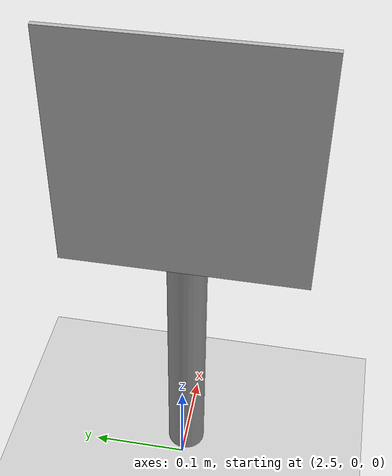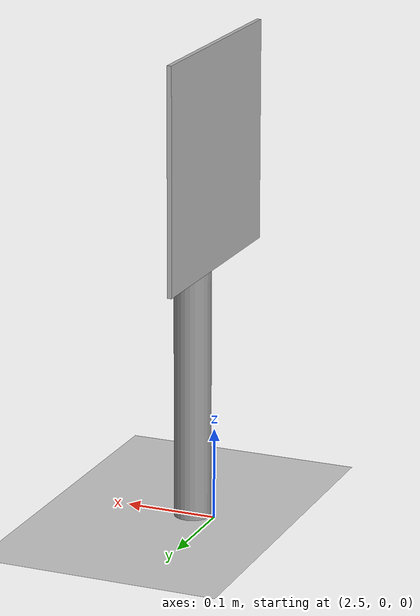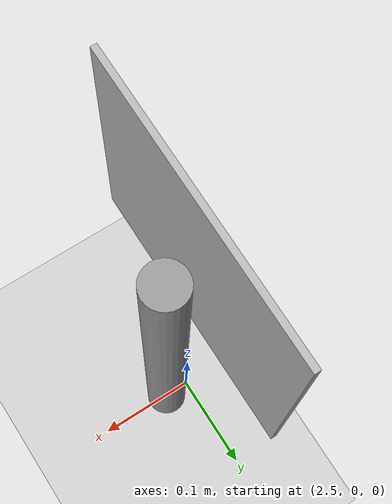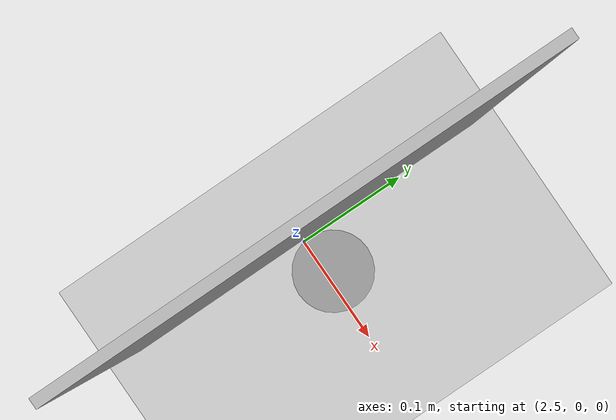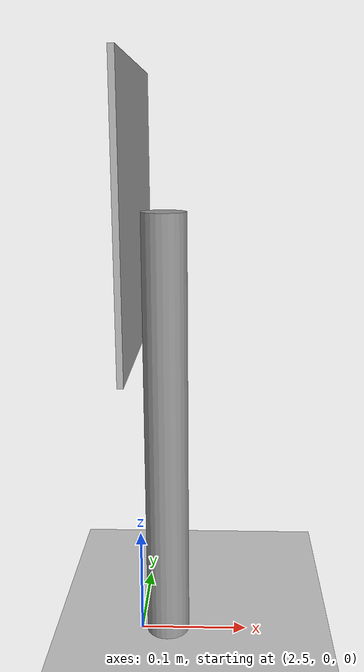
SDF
<sdf version="1.7">
  <world name="aruco_docking_world">
    <physics type="ode">
      <max_step_size>0.001</max_step_size>
      <real_time_update_rate>1000</real_time_update_rate>
      <ode>
        <solver><iters>150</iters><sor>1.3</sor></solver>
        <constraints><erp>0.2</erp><cfm>0.0</cfm></constraints>
      </ode>
    </physics>

    <scene>
      <ambient>0.8 0.8 0.8 1</ambient>
      <background>0.3 0.3 0.3 1</background>
      <grid>false</grid>
    </scene>

    <include><uri>model://sun</uri></include>
    <include><uri>model://ground_plane</uri></include>

    <include>
      <uri>model://aruco_marker_board</uri>
      <name>aruco_marker_0</name>
      <pose>2.5 0 0 0 0 3.14159265</pose>
    </include>

  </world>
</sdf>

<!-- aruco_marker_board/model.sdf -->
<sdf version="1.7">
  <model name="aruco_marker_board">
    <static>true</static>

    <!-- Vertical post — offset -0.025 m in local X so it sits behind the marker
         panel (panel back face is at x = -0.0025 m); invisible from the front. -->
    <link name="post_link">
      <visual name="post_visual">
        <pose>-0.025 0 0.2 0 0 0</pose>
        <geometry><cylinder><radius>0.02</radius><length>0.4</length></cylinder></geometry>
        <material><script><name>Gazebo/Grey</name></script></material>
      </visual>
      <collision name="post_collision">
        <pose>-0.025 0 0.2 0 0 0</pose>
        <geometry><cylinder><radius>0.02</radius><length>0.4</length></cylinder></geometry>
      </collision>
    </link>

    <!-- Marker panel: 0.24 x 0.24 m (thin in local X).
         Rotate the model 180 deg around Z in the world file so the +X face
         (where OGRE maps the texture without mirroring) faces the robot. -->
    <link name="marker_link">
      <pose>0 0 0.4 0 0 0</pose>
      <visual name="marker_visual">
        <geometry>
          <box><size>0.005 0.24 0.24</size></box>
        </geometry>
        <material>
          <script>
            <uri>model://aruco_marker_board/materials/scripts</uri>
            <uri>model://aruco_marker_board/materials/textures</uri>
            <name>ArUcoMarker/Marker0</name>
          </script>
        </material>
      </visual>
      <collision name="marker_collision">
        <geometry><box><size>0.005 0.24 0.24</size></box></geometry>
      </collision>
    </link>

    <joint name="post_marker_joint" type="fixed">
      <parent>post_link</parent>
      <child>marker_link</child>
    </joint>
  </model>
</sdf>
